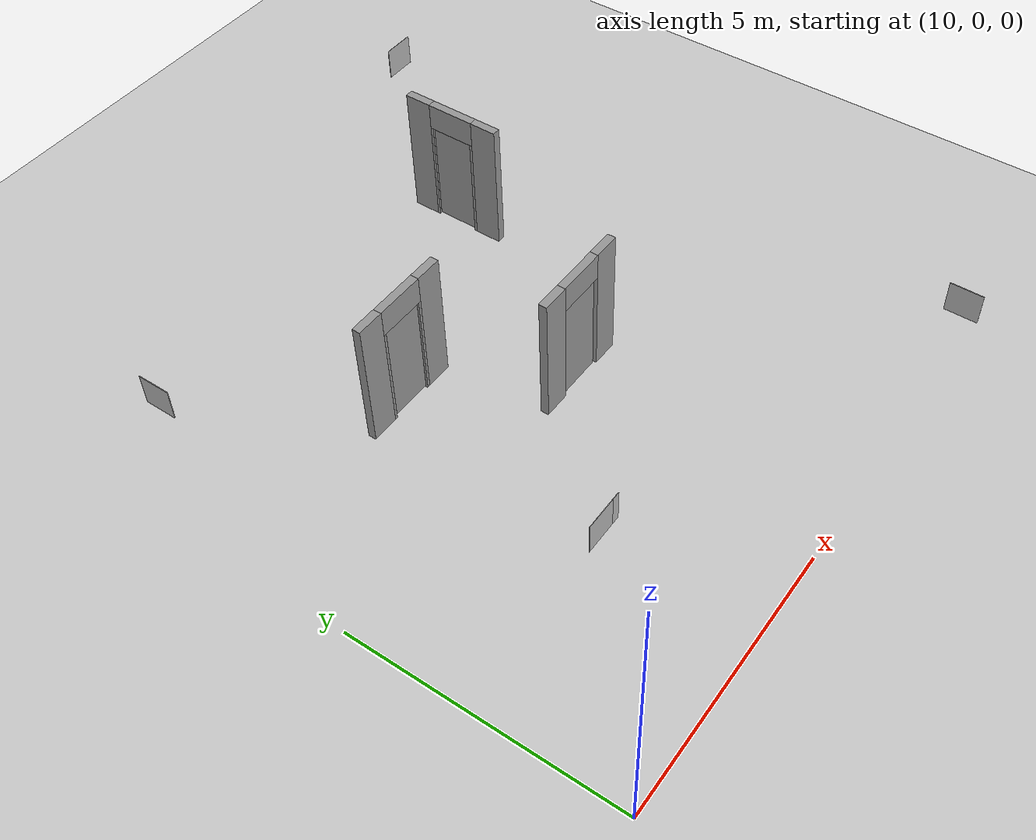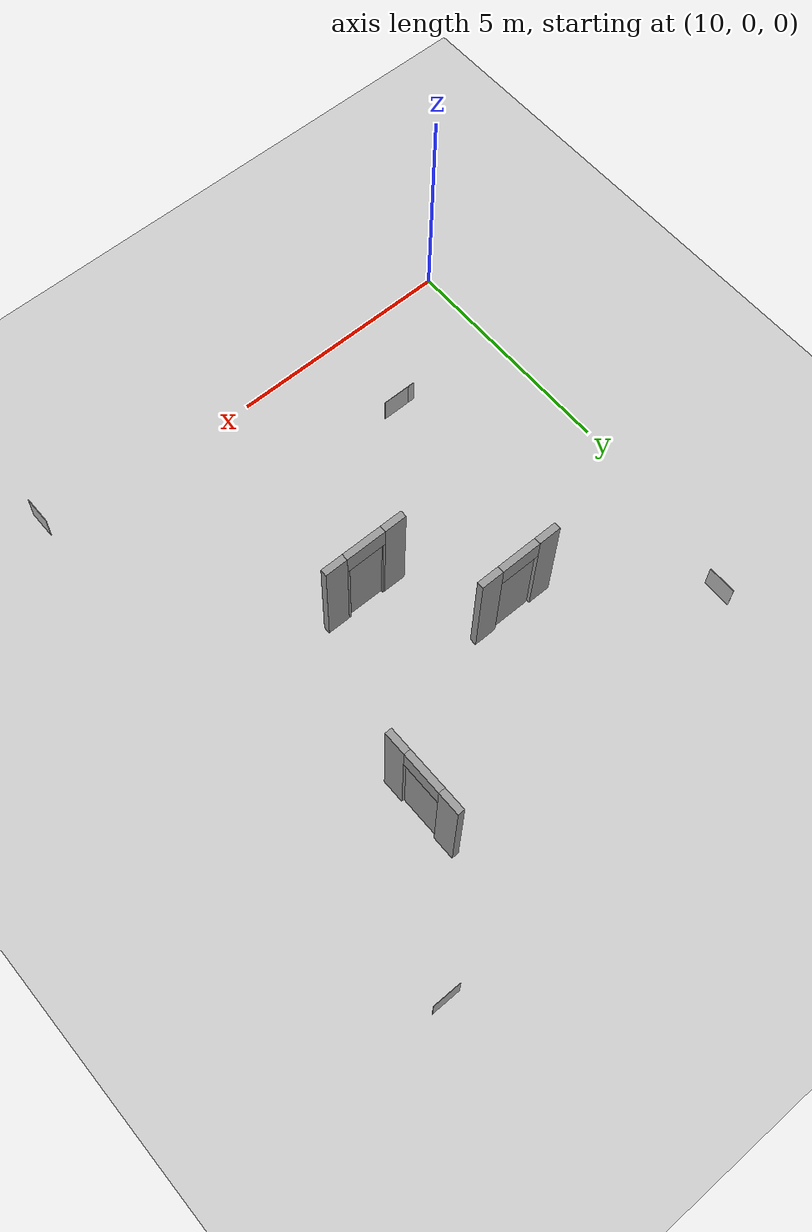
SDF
<sdf version="1.7">
 <world name="default">
  <model name="ground_plane">
   <static>1</static>
   <link name="link">
    <collision name="collision">
     <geometry><plane><normal>0 0 1</normal><size>100 100</size></plane></geometry>
     <surface><friction><ode><mu>100</mu><mu2>50</mu2></ode></friction></surface>
    </collision>
    <visual name="visual">
     <cast_shadows>0</cast_shadows>
     <geometry><plane><normal>0 0 1</normal><size>100 100</size></plane></geometry>
     <material>
      <script><uri>file://media/materials/scripts/gazebo.material</uri><name>Gazebo/Grey</name></script>
     </material>
    </visual>
   </link>
  </model>
  <model name="wall_with_door_no_gap_0">
   <link name="Wall">
    <pose>0 0 0 0 -4e-06 0</pose>
    <inertial>
     <inertia><ixx>1</ixx><ixy>0</ixy><ixz>0</ixz><iyy>1</iyy><iyz>0</iyz><izz>1</izz></inertia>
     <mass>1</mass>
    </inertial>
    <visual name="Wall_Visual_4">
     <pose>0.425 -0.055 1 0 -0 0</pose>
     <geometry><box><size>0.05 0.04 2</size></box></geometry>
     <material>
      <script><uri>file://media/materials/scripts/gazebo.material</uri><name>Gazebo/Grey</name></script>
      <ambient>1 1 1 1</ambient>
      <shader type="pixel"><normal_map>__default__</normal_map></shader>
      <emissive>0 0 0 1</emissive>
      <diffuse>0.7 0.7 0.7 1</diffuse>
      <specular>0.01 0.01 0.01 1</specular>
     </material>
     <meta><layer>0</layer></meta>
    </visual>
    <visual name="Wall_Visual_0">
     <pose>-0.7 0 1.25 0 -0 0</pose>
     <geometry><box><size>0.5 0.15 2.5</size></box></geometry>
     <material>
      <script><uri>file://media/materials/scripts/gazebo.material</uri><name>Gazebo/Grey</name></script>
      <ambient>1 1 1 1</ambient>
      <shader type="pixel"><normal_map>__default__</normal_map></shader>
      <emissive>0 0 0 1</emissive>
      <diffuse>0.7 0.7 0.7 1</diffuse>
      <specular>0.01 0.01 0.01 1</specular>
     </material>
     <meta><layer>0</layer></meta>
    </visual>
    <visual name="Wall_visual_3">
     <pose>-0.425 -0.055 1 0 -0 0</pose>
     <geometry><box><size>0.05 0.04 2</size></box></geometry>
     <material>
      <script><uri>file://media/materials/scripts/gazebo.material</uri><name>Gazebo/Grey</name></script>
      <ambient>1 1 1 1</ambient>
      <shader type="pixel"><normal_map>__default__</normal_map></shader>
      <emissive>0 0 0 1</emissive>
      <diffuse>0.7 0.7 0.7 1</diffuse>
      <specular>0.01 0.01 0.01 1</specular>
     </material>
     <meta><layer>0</layer></meta>
    </visual>
    <visual name="Wall_Visual_1">
     <pose>0.7 0 1.25 0 -0 0</pose>
     <geometry><box><size>0.5 0.15 2.5</size></box></geometry>
     <material>
      <script><uri>file://media/materials/scripts/gazebo.material</uri><name>Gazebo/Grey</name></script>
      <ambient>1 1 1 1</ambient>
      <shader type="pixel"><normal_map>__default__</normal_map></shader>
      <emissive>0 0 0 1</emissive>
      <diffuse>0.7 0.7 0.7 1</diffuse>
      <specular>0.01 0.01 0.01 1</specular>
     </material>
     <meta><layer>0</layer></meta>
    </visual>
    <visual name="Wall_Visual_2">
     <pose>0 0 2.25 0 -0 0</pose>
     <geometry><box><size>0.9 0.15 0.5</size></box></geometry>
     <material>
      <script><uri>file://media/materials/scripts/gazebo.material</uri><name>Gazebo/Grey</name></script>
      <ambient>1 1 1 1</ambient>
      <shader type="pixel"><normal_map>__default__</normal_map></shader>
      <emissive>0 0 0 1</emissive>
      <diffuse>0.7 0.7 0.7 1</diffuse>
      <specular>0.01 0.01 0.01 1</specular>
     </material>
     <meta><layer>0</layer></meta>
    </visual>
    <collision name="Wall_Collision_3">
     <pose>-0.425 -0.055 1 0 -0 0</pose>
     <geometry><box><size>0.05 0.04 2</size></box></geometry>
     <surface>
      <friction>
       <ode><mu>1</mu><mu2>1</mu2><fdir1>0 0 0</fdir1><slip1>0</slip1><slip2>0</slip2></ode>
       <torsional>
        <coefficient>1</coefficient>
        <patch_radius>0</patch_radius>
        <surface_radius>0</surface_radius>
        <use_patch_radius>1</use_patch_radius>
        <ode><slip>0</slip></ode>
       </torsional>
      </friction>
      <bounce><restitution_coefficient>0</restitution_coefficient><threshold>1e+06</threshold></bounce>
      <contact>
       <collide_without_contact>0</collide_without_contact>
       <collide_without_contact_bitmask>1</collide_without_contact_bitmask>
       <collide_bitmask>1</collide_bitmask>
       <ode>
        <soft_cfm>0</soft_cfm>
        <soft_erp>0.2</soft_erp>
        <kp>1e+13</kp>
        <kd>1</kd>
        <max_vel>0.01</max_vel>
        <min_depth>0</min_depth>
       </ode>
       <bullet>
        <split_impulse>1</split_impulse>
        <split_impulse_penetration_threshold>-0.01</split_impulse_penetration_threshold>
        <soft_cfm>0</soft_cfm>
        <soft_erp>0.2</soft_erp>
        <kp>1e+13</kp>
        <kd>1</kd>
       </bullet>
      </contact>
     </surface>
    </collision>
    <collision name="Wall_Collision_4">
     <pose>0.425 -0.055 1 0 -0 0</pose>
     <geometry><box><size>0.05 0.04 2</size></box></geometry>
     <surface>
      <friction>
       <ode><mu>1</mu><mu2>1</mu2><fdir1>0 0 0</fdir1><slip1>0</slip1><slip2>0</slip2></ode>
       <torsional>
        <coefficient>1</coefficient>
        <patch_radius>0</patch_radius>
        <surface_radius>0</surface_radius>
        <use_patch_radius>1</use_patch_radius>
        <ode><slip>0</slip></ode>
       </torsional>
      </friction>
      <bounce><restitution_coefficient>0</restitution_coefficient><threshold>1e+06</threshold></bounce>
      <contact>
       <collide_without_contact>0</collide_without_contact>
       <collide_without_contact_bitmask>1</collide_without_contact_bitmask>
       <collide_bitmask>1</collide_bitmask>
       <ode>
        <soft_cfm>0</soft_cfm>
        <soft_erp>0.2</soft_erp>
        <kp>1e+13</kp>
        <kd>1</kd>
        <max_vel>0.01</max_vel>
        <min_depth>0</min_depth>
       </ode>
       <bullet>
        <split_impulse>1</split_impulse>
        <split_impulse_penetration_threshold>-0.01</split_impulse_penetration_threshold>
        <soft_cfm>0</soft_cfm>
        <soft_erp>0.2</soft_erp>
        <kp>1e+13</kp>
        <kd>1</kd>
       </bullet>
      </contact>
     </surface>
    </collision>
    <collision name="Wall_Collision_1">
     <pose>0.7 0 1.25 0 -0 0</pose>
     <geometry><box><size>0.5 0.15 2.5</size></box></geometry>
     <surface>
      <friction>
       <ode><mu>1</mu><mu2>1</mu2><fdir1>0 0 0</fdir1><slip1>0</slip1><slip2>0</slip2></ode>
       <torsional>
        <coefficient>1</coefficient>
        <patch_radius>0</patch_radius>
        <surface_radius>0</surface_radius>
        <use_patch_radius>1</use_patch_radius>
        <ode><slip>0</slip></ode>
       </torsional>
      </friction>
      <bounce><restitution_coefficient>0</restitution_coefficient><threshold>1e+06</threshold></bounce>
      <contact>
       <collide_without_contact>0</collide_without_contact>
       <collide_without_contact_bitmask>1</collide_without_contact_bitmask>
       <collide_bitmask>1</collide_bitmask>
       <ode>
        <soft_cfm>0</soft_cfm>
        <soft_erp>0.2</soft_erp>
        <kp>1e+13</kp>
        <kd>1</kd>
        <max_vel>0.01</max_vel>
        <min_depth>0</min_depth>
       </ode>
       <bullet>
        <split_impulse>1</split_impulse>
        <split_impulse_penetration_threshold>-0.01</split_impulse_penetration_threshold>
        <soft_cfm>0</soft_cfm>
        <soft_erp>0.2</soft_erp>
        <kp>1e+13</kp>
        <kd>1</kd>
       </bullet>
      </contact>
     </surface>
    </collision>
    <collision name="Wall_Collision_0">
     <pose>-0.7 0 1.25 0 -0 0</pose>
     <geometry><box><size>0.5 0.15 2.5</size></box></geometry>
     <surface>
      <friction>
       <ode><mu>1</mu><mu2>1</mu2><fdir1>0 0 0</fdir1><slip1>0</slip1><slip2>0</slip2></ode>
       <torsional>
        <coefficient>1</coefficient>
        <patch_radius>0</patch_radius>
        <surface_radius>0</surface_radius>
        <use_patch_radius>1</use_patch_radius>
        <ode><slip>0</slip></ode>
       </torsional>
      </friction>
      <bounce><restitution_coefficient>0</restitution_coefficient><threshold>1e+06</threshold></bounce>
      <contact>
       <collide_without_contact>0</collide_without_contact>
       <collide_without_contact_bitmask>1</collide_without_contact_bitmask>
       <collide_bitmask>1</collide_bitmask>
       <ode>
        <soft_cfm>0</soft_cfm>
        <soft_erp>0.2</soft_erp>
        <kp>1e+13</kp>
        <kd>1</kd>
        <max_vel>0.01</max_vel>
        <min_depth>0</min_depth>
       </ode>
       <bullet>
        <split_impulse>1</split_impulse>
        <split_impulse_penetration_threshold>-0.01</split_impulse_penetration_threshold>
        <soft_cfm>0</soft_cfm>
        <soft_erp>0.2</soft_erp>
        <kp>1e+13</kp>
        <kd>1</kd>
       </bullet>
      </contact>
     </surface>
    </collision>
    <collision name="Wall_Collision_2">
     <pose>0 0 2.25 0 -0 0</pose>
     <geometry><box><size>0.9 0.15 0.5</size></box></geometry>
     <surface>
      <friction>
       <ode><mu>1</mu><mu2>1</mu2><fdir1>0 0 0</fdir1><slip1>0</slip1><slip2>0</slip2></ode>
       <torsional>
        <coefficient>1</coefficient>
        <patch_radius>0</patch_radius>
        <surface_radius>0</surface_radius>
        <use_patch_radius>1</use_patch_radius>
        <ode><slip>0</slip></ode>
       </torsional>
      </friction>
      <bounce><restitution_coefficient>0</restitution_coefficient><threshold>1e+06</threshold></bounce>
      <contact>
       <collide_without_contact>0</collide_without_contact>
       <collide_without_contact_bitmask>1</collide_without_contact_bitmask>
       <collide_bitmask>1</collide_bitmask>
       <ode>
        <soft_cfm>0</soft_cfm>
        <soft_erp>0.2</soft_erp>
        <kp>1e+13</kp>
        <kd>1</kd>
        <max_vel>0.01</max_vel>
        <min_depth>0</min_depth>
       </ode>
       <bullet>
        <split_impulse>1</split_impulse>
        <split_impulse_penetration_threshold>-0.01</split_impulse_penetration_threshold>
        <soft_cfm>0</soft_cfm>
        <soft_erp>0.2</soft_erp>
        <kp>1e+13</kp>
        <kd>1</kd>
       </bullet>
      </contact>
     </surface>
    </collision>
    <static>1</static>
   </link>
   <link name="door">
    <inertial>
     <mass>1</mass>
     <inertia>
      <ixx>0.166667</ixx>
      <ixy>0</ixy>
      <ixz>0</ixz>
      <iyy>0.166667</iyy>
      <iyz>0</iyz>
      <izz>0.166667</izz>
     </inertia>
    </inertial>
    <pose>-0 -0 1 0 -4e-06 0</pose>
    <visual name="visual">
     <pose>0.01 0 0 0 -0 0</pose>
     <geometry><box><size>0.86 0.04 2</size></box></geometry>
     <material>
      <lighting>1</lighting>
      <script><uri>file://media/materials/scripts/gazebo.material</uri><name>Gazebo/Grey</name></script>
      <shader type="pixel"><normal_map>__default__</normal_map></shader>
      <ambient>0.3 0.3 0.3 1</ambient>
      <diffuse>0.7 0.7 0.7 1</diffuse>
      <specular>0.01 0.01 0.01 1</specular>
      <emissive>0 0 0 1</emissive>
     </material>
    </visual>
    <collision name="collision">
     <pose>0.01 0 0 0 -0 0</pose>
     <geometry><box><size>0.84 0.04 2</size></box></geometry>
     <surface>
      <friction>
       <ode><mu>1</mu><mu2>1</mu2><fdir1>0 0 0</fdir1><slip1>0</slip1><slip2>0</slip2></ode>
       <torsional>
        <coefficient>1</coefficient>
        <patch_radius>0</patch_radius>
        <surface_radius>0</surface_radius>
        <use_patch_radius>1</use_patch_radius>
        <ode><slip>0</slip></ode>
       </torsional>
      </friction>
      <bounce><restitution_coefficient>0</restitution_coefficient><threshold>1e+06</threshold></bounce>
      <contact>
       <collide_without_contact>0</collide_without_contact>
       <collide_without_contact_bitmask>1</collide_without_contact_bitmask>
       <collide_bitmask>1</collide_bitmask>
       <ode>
        <soft_cfm>0</soft_cfm>
        <soft_erp>0.2</soft_erp>
        <kp>1e+13</kp>
        <kd>1</kd>
        <max_vel>0.01</max_vel>
        <min_depth>0</min_depth>
       </ode>
       <bullet>
        <split_impulse>1</split_impulse>
        <split_impulse_penetration_threshold>-0.01</split_impulse_penetration_threshold>
        <soft_cfm>0</soft_cfm>
        <soft_erp>0.2</soft_erp>
        <kp>1e+13</kp>
        <kd>1</kd>
       </bullet>
      </contact>
     </surface>
    </collision>
    <static>0</static>
   </link>
   <joint name="Door_JOINT" type="revolute">
    <parent>Wall</parent>
    <child>door</child>
    <pose>-0.43 0 0 0 -0 0</pose>
    <axis>
     <xyz>0 0 1</xyz>
     <limit><lower>0</lower><upper>1.57</upper><effort>-1</effort><velocity>-1</velocity></limit>
     <dynamics>
      <spring_reference>0</spring_reference>
      <spring_stiffness>0</spring_stiffness>
      <damping>0</damping>
      <friction>0</friction>
     </dynamics>
    </axis>
    <physics>
     <ode><limit><cfm>0</cfm><erp>0.2</erp></limit><suspension><cfm>0</cfm><erp>0.2</erp></suspension></ode>
    </physics>
   </joint>
   <joint name="WALL_FIXED" type="fixed"><parent>world</parent><child>Wall</child></joint>
   <plugin name="wall_and_door_plugin" filename="libDoorControlPlugin.so">
    <initial_position>1.57</initial_position>
    <switch_flag>true</switch_flag>
    <switch_duration>15</switch_duration>
   </plugin>
   <static>0</static>
   <pose>14 7 0 0 -0 0</pose>
  </model>
  <model name="wall_with_door_no_gap_1">
   <link name="Wall">
    <pose>0 0 0 0 -4e-06 0</pose>
    <inertial>
     <inertia><ixx>1</ixx><ixy>0</ixy><ixz>0</ixz><iyy>1</iyy><iyz>0</iyz><izz>1</izz></inertia>
     <mass>1</mass>
    </inertial>
    <visual name="Wall_Visual_4">
     <pose>0.425 -0.055 1 0 -0 0</pose>
     <geometry><box><size>0.05 0.04 2</size></box></geometry>
     <material>
      <script><uri>file://media/materials/scripts/gazebo.material</uri><name>Gazebo/Grey</name></script>
      <ambient>1 1 1 1</ambient>
      <shader type="pixel"><normal_map>__default__</normal_map></shader>
      <emissive>0 0 0 1</emissive>
      <diffuse>0.7 0.7 0.7 1</diffuse>
      <specular>0.01 0.01 0.01 1</specular>
     </material>
     <meta><layer>0</layer></meta>
    </visual>
    <visual name="Wall_Visual_0">
     <pose>-0.7 0 1.25 0 -0 0</pose>
     <geometry><box><size>0.5 0.15 2.5</size></box></geometry>
     <material>
      <script><uri>file://media/materials/scripts/gazebo.material</uri><name>Gazebo/Grey</name></script>
      <ambient>1 1 1 1</ambient>
      <shader type="pixel"><normal_map>__default__</normal_map></shader>
      <emissive>0 0 0 1</emissive>
      <diffuse>0.7 0.7 0.7 1</diffuse>
      <specular>0.01 0.01 0.01 1</specular>
     </material>
     <meta><layer>0</layer></meta>
    </visual>
    <visual name="Wall_visual_3">
     <pose>-0.425 -0.055 1 0 -0 0</pose>
     <geometry><box><size>0.05 0.04 2</size></box></geometry>
     <material>
      <script><uri>file://media/materials/scripts/gazebo.material</uri><name>Gazebo/Grey</name></script>
      <ambient>1 1 1 1</ambient>
      <shader type="pixel"><normal_map>__default__</normal_map></shader>
      <emissive>0 0 0 1</emissive>
      <diffuse>0.7 0.7 0.7 1</diffuse>
      <specular>0.01 0.01 0.01 1</specular>
     </material>
     <meta><layer>0</layer></meta>
    </visual>
    <visual name="Wall_Visual_1">
     <pose>0.7 0 1.25 0 -0 0</pose>
     <geometry><box><size>0.5 0.15 2.5</size></box></geometry>
     <material>
      <script><uri>file://media/materials/scripts/gazebo.material</uri><name>Gazebo/Grey</name></script>
      <ambient>1 1 1 1</ambient>
      <shader type="pixel"><normal_map>__default__</normal_map></shader>
      <emissive>0 0 0 1</emissive>
      <diffuse>0.7 0.7 0.7 1</diffuse>
      <specular>0.01 0.01 0.01 1</specular>
     </material>
     <meta><layer>0</layer></meta>
    </visual>
    <visual name="Wall_Visual_2">
     <pose>0 0 2.25 0 -0 0</pose>
     <geometry><box><size>0.9 0.15 0.5</size></box></geometry>
     <material>
      <script><uri>file://media/materials/scripts/gazebo.material</uri><name>Gazebo/Grey</name></script>
      <ambient>1 1 1 1</ambient>
      <shader type="pixel"><normal_map>__default__</normal_map></shader>
      <emissive>0 0 0 1</emissive>
      <diffuse>0.7 0.7 0.7 1</diffuse>
      <specular>0.01 0.01 0.01 1</specular>
     </material>
     <meta><layer>0</layer></meta>
    </visual>
    <collision name="Wall_Collision_3">
     <pose>-0.425 -0.055 1 0 -0 0</pose>
     <geometry><box><size>0.05 0.04 2</size></box></geometry>
     <surface>
      <friction>
       <ode><mu>1</mu><mu2>1</mu2><fdir1>0 0 0</fdir1><slip1>0</slip1><slip2>0</slip2></ode>
       <torsional>
        <coefficient>1</coefficient>
        <patch_radius>0</patch_radius>
        <surface_radius>0</surface_radius>
        <use_patch_radius>1</use_patch_radius>
        <ode><slip>0</slip></ode>
       </torsional>
      </friction>
      <bounce><restitution_coefficient>0</restitution_coefficient><threshold>1e+06</threshold></bounce>
      <contact>
       <collide_without_contact>0</collide_without_contact>
       <collide_without_contact_bitmask>1</collide_without_contact_bitmask>
       <collide_bitmask>1</collide_bitmask>
       <ode>
        <soft_cfm>0</soft_cfm>
        <soft_erp>0.2</soft_erp>
        <kp>1e+13</kp>
        <kd>1</kd>
        <max_vel>0.01</max_vel>
        <min_depth>0</min_depth>
       </ode>
       <bullet>
        <split_impulse>1</split_impulse>
        <split_impulse_penetration_threshold>-0.01</split_impulse_penetration_threshold>
        <soft_cfm>0</soft_cfm>
        <soft_erp>0.2</soft_erp>
        <kp>1e+13</kp>
        <kd>1</kd>
       </bullet>
      </contact>
     </surface>
    </collision>
    <collision name="Wall_Collision_4">
     <pose>0.425 -0.055 1 0 -0 0</pose>
     <geometry><box><size>0.05 0.04 2</size></box></geometry>
     <surface>
      <friction>
       <ode><mu>1</mu><mu2>1</mu2><fdir1>0 0 0</fdir1><slip1>0</slip1><slip2>0</slip2></ode>
       <torsional>
        <coefficient>1</coefficient>
        <patch_radius>0</patch_radius>
        <surface_radius>0</surface_radius>
        <use_patch_radius>1</use_patch_radius>
        <ode><slip>0</slip></ode>
       </torsional>
      </friction>
      <bounce><restitution_coefficient>0</restitution_coefficient><threshold>1e+06</threshold></bounce>
      <contact>
       <collide_without_contact>0</collide_without_contact>
       <collide_without_contact_bitmask>1</collide_without_contact_bitmask>
       <collide_bitmask>1</collide_bitmask>
       <ode>
        <soft_cfm>0</soft_cfm>
        <soft_erp>0.2</soft_erp>
        <kp>1e+13</kp>
        <kd>1</kd>
        <max_vel>0.01</max_vel>
        <min_depth>0</min_depth>
       </ode>
       <bullet>
        <split_impulse>1</split_impulse>
        <split_impulse_penetration_threshold>-0.01</split_impulse_penetration_threshold>
        <soft_cfm>0</soft_cfm>
        <soft_erp>0.2</soft_erp>
        <kp>1e+13</kp>
        <kd>1</kd>
       </bullet>
      </contact>
     </surface>
    </collision>
    <collision name="Wall_Collision_1">
     <pose>0.7 0 1.25 0 -0 0</pose>
     <geometry><box><size>0.5 0.15 2.5</size></box></geometry>
     <surface>
      <friction>
       <ode><mu>1</mu><mu2>1</mu2><fdir1>0 0 0</fdir1><slip1>0</slip1><slip2>0</slip2></ode>
       <torsional>
        <coefficient>1</coefficient>
        <patch_radius>0</patch_radius>
        <surface_radius>0</surface_radius>
        <use_patch_radius>1</use_patch_radius>
        <ode><slip>0</slip></ode>
       </torsional>
      </friction>
      <bounce><restitution_coefficient>0</restitution_coefficient><threshold>1e+06</threshold></bounce>
      <contact>
       <collide_without_contact>0</collide_without_contact>
       <collide_without_contact_bitmask>1</collide_without_contact_bitmask>
       <collide_bitmask>1</collide_bitmask>
       <ode>
        <soft_cfm>0</soft_cfm>
        <soft_erp>0.2</soft_erp>
        <kp>1e+13</kp>
        <kd>1</kd>
        <max_vel>0.01</max_vel>
        <min_depth>0</min_depth>
       </ode>
       <bullet>
        <split_impulse>1</split_impulse>
        <split_impulse_penetration_threshold>-0.01</split_impulse_penetration_threshold>
        <soft_cfm>0</soft_cfm>
        <soft_erp>0.2</soft_erp>
        <kp>1e+13</kp>
        <kd>1</kd>
       </bullet>
      </contact>
     </surface>
    </collision>
    <collision name="Wall_Collision_0">
     <pose>-0.7 0 1.25 0 -0 0</pose>
     <geometry><box><size>0.5 0.15 2.5</size></box></geometry>
     <surface>
      <friction>
       <ode><mu>1</mu><mu2>1</mu2><fdir1>0 0 0</fdir1><slip1>0</slip1><slip2>0</slip2></ode>
       <torsional>
        <coefficient>1</coefficient>
        <patch_radius>0</patch_radius>
        <surface_radius>0</surface_radius>
        <use_patch_radius>1</use_patch_radius>
        <ode><slip>0</slip></ode>
       </torsional>
      </friction>
      <bounce><restitution_coefficient>0</restitution_coefficient><threshold>1e+06</threshold></bounce>
      <contact>
       <collide_without_contact>0</collide_without_contact>
       <collide_without_contact_bitmask>1</collide_without_contact_bitmask>
       <collide_bitmask>1</collide_bitmask>
       <ode>
        <soft_cfm>0</soft_cfm>
        <soft_erp>0.2</soft_erp>
        <kp>1e+13</kp>
        <kd>1</kd>
        <max_vel>0.01</max_vel>
        <min_depth>0</min_depth>
       </ode>
       <bullet>
        <split_impulse>1</split_impulse>
        <split_impulse_penetration_threshold>-0.01</split_impulse_penetration_threshold>
        <soft_cfm>0</soft_cfm>
        <soft_erp>0.2</soft_erp>
        <kp>1e+13</kp>
        <kd>1</kd>
       </bullet>
      </contact>
     </surface>
    </collision>
    <collision name="Wall_Collision_2">
     <pose>0 0 2.25 0 -0 0</pose>
     <geometry><box><size>0.9 0.15 0.5</size></box></geometry>
     <surface>
      <friction>
       <ode><mu>1</mu><mu2>1</mu2><fdir1>0 0 0</fdir1><slip1>0</slip1><slip2>0</slip2></ode>
       <torsional>
        <coefficient>1</coefficient>
        <patch_radius>0</patch_radius>
        <surface_radius>0</surface_radius>
        <use_patch_radius>1</use_patch_radius>
        <ode><slip>0</slip></ode>
       </torsional>
      </friction>
      <bounce><restitution_coefficient>0</restitution_coefficient><threshold>1e+06</threshold></bounce>
      <contact>
       <collide_without_contact>0</collide_without_contact>
       <collide_without_contact_bitmask>1</collide_without_contact_bitmask>
       <collide_bitmask>1</collide_bitmask>
       <ode>
        <soft_cfm>0</soft_cfm>
        <soft_erp>0.2</soft_erp>
        <kp>1e+13</kp>
        <kd>1</kd>
        <max_vel>0.01</max_vel>
        <min_depth>0</min_depth>
       </ode>
       <bullet>
        <split_impulse>1</split_impulse>
        <split_impulse_penetration_threshold>-0.01</split_impulse_penetration_threshold>
        <soft_cfm>0</soft_cfm>
        <soft_erp>0.2</soft_erp>
        <kp>1e+13</kp>
        <kd>1</kd>
       </bullet>
      </contact>
     </surface>
    </collision>
    <static>1</static>
   </link>
   <link name="door">
    <inertial>
     <mass>1</mass>
     <inertia>
      <ixx>0.166667</ixx>
      <ixy>0</ixy>
      <ixz>0</ixz>
      <iyy>0.166667</iyy>
      <iyz>0</iyz>
      <izz>0.166667</izz>
     </inertia>
    </inertial>
    <pose>-0 -0 1 0 -4e-06 0</pose>
    <visual name="visual">
     <pose>0.01 0 0 0 -0 0</pose>
     <geometry><box><size>0.86 0.04 2</size></box></geometry>
     <material>
      <lighting>1</lighting>
      <script><uri>file://media/materials/scripts/gazebo.material</uri><name>Gazebo/Grey</name></script>
      <shader type="pixel"><normal_map>__default__</normal_map></shader>
      <ambient>0.3 0.3 0.3 1</ambient>
      <diffuse>0.7 0.7 0.7 1</diffuse>
      <specular>0.01 0.01 0.01 1</specular>
      <emissive>0 0 0 1</emissive>
     </material>
    </visual>
    <collision name="collision">
     <pose>0.01 0 0 0 -0 0</pose>
     <geometry><box><size>0.84 0.04 2</size></box></geometry>
     <surface>
      <friction>
       <ode><mu>1</mu><mu2>1</mu2><fdir1>0 0 0</fdir1><slip1>0</slip1><slip2>0</slip2></ode>
       <torsional>
        <coefficient>1</coefficient>
        <patch_radius>0</patch_radius>
        <surface_radius>0</surface_radius>
        <use_patch_radius>1</use_patch_radius>
        <ode><slip>0</slip></ode>
       </torsional>
      </friction>
      <bounce><restitution_coefficient>0</restitution_coefficient><threshold>1e+06</threshold></bounce>
      <contact>
       <collide_without_contact>0</collide_without_contact>
       <collide_without_contact_bitmask>1</collide_without_contact_bitmask>
       <collide_bitmask>1</collide_bitmask>
       <ode>
        <soft_cfm>0</soft_cfm>
        <soft_erp>0.2</soft_erp>
        <kp>1e+13</kp>
        <kd>1</kd>
        <max_vel>0.01</max_vel>
        <min_depth>0</min_depth>
       </ode>
       <bullet>
        <split_impulse>1</split_impulse>
        <split_impulse_penetration_threshold>-0.01</split_impulse_penetration_threshold>
        <soft_cfm>0</soft_cfm>
        <soft_erp>0.2</soft_erp>
        <kp>1e+13</kp>
        <kd>1</kd>
       </bullet>
      </contact>
     </surface>
    </collision>
    <static>0</static>
   </link>
   <joint name="Door_JOINT" type="revolute">
    <parent>Wall</parent>
    <child>door</child>
    <pose>-0.43 0 0 0 -0 0</pose>
    <axis>
     <xyz>0 0 1</xyz>
     <limit><lower>0</lower><upper>1.57</upper><effort>-1</effort><velocity>-1</velocity></limit>
     <dynamics>
      <spring_reference>0</spring_reference>
      <spring_stiffness>0</spring_stiffness>
      <damping>0</damping>
      <friction>0</friction>
     </dynamics>
    </axis>
    <physics>
     <ode><limit><cfm>0</cfm><erp>0.2</erp></limit><suspension><cfm>0</cfm><erp>0.2</erp></suspension></ode>
    </physics>
   </joint>
   <joint name="WALL_FIXED" type="fixed"><parent>world</parent><child>Wall</child></joint>
   <plugin name="wall_and_door_plugin" filename="libDoorControlPlugin.so">
    <initial_position>0</initial_position>
    <switch_flag>true</switch_flag>
    <switch_duration>15</switch_duration>
   </plugin>
   <static>0</static>
   <pose>18 9 0 0 0 -1.57</pose>
  </model>
  <model name="wall_with_door_no_gap_4">
   <link name="Wall">
    <pose>0 0 0 0 -4e-06 0</pose>
    <inertial>
     <inertia><ixx>1</ixx><ixy>0</ixy><ixz>0</ixz><iyy>1</iyy><iyz>0</iyz><izz>1</izz></inertia>
     <mass>1</mass>
    </inertial>
    <visual name="Wall_Visual_4">
     <pose>0.425 -0.055 1 0 -0 0</pose>
     <geometry><box><size>0.05 0.04 2</size></box></geometry>
     <material>
      <script><uri>file://media/materials/scripts/gazebo.material</uri><name>Gazebo/Grey</name></script>
      <ambient>1 1 1 1</ambient>
      <shader type="pixel"><normal_map>__default__</normal_map></shader>
      <emissive>0 0 0 1</emissive>
      <diffuse>0.7 0.7 0.7 1</diffuse>
      <specular>0.01 0.01 0.01 1</specular>
     </material>
     <meta><layer>0</layer></meta>
    </visual>
    <visual name="Wall_Visual_0">
     <pose>-0.7 0 1.25 0 -0 0</pose>
     <geometry><box><size>0.5 0.15 2.5</size></box></geometry>
     <material>
      <script><uri>file://media/materials/scripts/gazebo.material</uri><name>Gazebo/Grey</name></script>
      <ambient>1 1 1 1</ambient>
      <shader type="pixel"><normal_map>__default__</normal_map></shader>
      <emissive>0 0 0 1</emissive>
      <diffuse>0.7 0.7 0.7 1</diffuse>
      <specular>0.01 0.01 0.01 1</specular>
     </material>
     <meta><layer>0</layer></meta>
    </visual>
    <visual name="Wall_visual_3">
     <pose>-0.425 -0.055 1 0 -0 0</pose>
     <geometry><box><size>0.05 0.04 2</size></box></geometry>
     <material>
      <script><uri>file://media/materials/scripts/gazebo.material</uri><name>Gazebo/Grey</name></script>
      <ambient>1 1 1 1</ambient>
      <shader type="pixel"><normal_map>__default__</normal_map></shader>
      <emissive>0 0 0 1</emissive>
      <diffuse>0.7 0.7 0.7 1</diffuse>
      <specular>0.01 0.01 0.01 1</specular>
     </material>
     <meta><layer>0</layer></meta>
    </visual>
    <visual name="Wall_Visual_1">
     <pose>0.7 0 1.25 0 -0 0</pose>
     <geometry><box><size>0.5 0.15 2.5</size></box></geometry>
     <material>
      <script><uri>file://media/materials/scripts/gazebo.material</uri><name>Gazebo/Grey</name></script>
      <ambient>1 1 1 1</ambient>
      <shader type="pixel"><normal_map>__default__</normal_map></shader>
      <emissive>0 0 0 1</emissive>
      <diffuse>0.7 0.7 0.7 1</diffuse>
      <specular>0.01 0.01 0.01 1</specular>
     </material>
     <meta><layer>0</layer></meta>
    </visual>
    <visual name="Wall_Visual_2">
     <pose>0 0 2.25 0 -0 0</pose>
     <geometry><box><size>0.9 0.15 0.5</size></box></geometry>
     <material>
      <script><uri>file://media/materials/scripts/gazebo.material</uri><name>Gazebo/Grey</name></script>
      <ambient>1 1 1 1</ambient>
      <shader type="pixel"><normal_map>__default__</normal_map></shader>
      <emissive>0 0 0 1</emissive>
      <diffuse>0.7 0.7 0.7 1</diffuse>
      <specular>0.01 0.01 0.01 1</specular>
     </material>
     <meta><layer>0</layer></meta>
    </visual>
    <collision name="Wall_Collision_3">
     <pose>-0.425 -0.055 1 0 -0 0</pose>
     <geometry><box><size>0.05 0.04 2</size></box></geometry>
     <surface>
      <friction>
       <ode><mu>1</mu><mu2>1</mu2><fdir1>0 0 0</fdir1><slip1>0</slip1><slip2>0</slip2></ode>
       <torsional>
        <coefficient>1</coefficient>
        <patch_radius>0</patch_radius>
        <surface_radius>0</surface_radius>
        <use_patch_radius>1</use_patch_radius>
        <ode><slip>0</slip></ode>
       </torsional>
      </friction>
      <bounce><restitution_coefficient>0</restitution_coefficient><threshold>1e+06</threshold></bounce>
      <contact>
       <collide_without_contact>0</collide_without_contact>
       <collide_without_contact_bitmask>1</collide_without_contact_bitmask>
       <collide_bitmask>1</collide_bitmask>
       <ode>
        <soft_cfm>0</soft_cfm>
        <soft_erp>0.2</soft_erp>
        <kp>1e+13</kp>
        <kd>1</kd>
        <max_vel>0.01</max_vel>
        <min_depth>0</min_depth>
       </ode>
       <bullet>
        <split_impulse>1</split_impulse>
        <split_impulse_penetration_threshold>-0.01</split_impulse_penetration_threshold>
        <soft_cfm>0</soft_cfm>
        <soft_erp>0.2</soft_erp>
        <kp>1e+13</kp>
        <kd>1</kd>
       </bullet>
      </contact>
     </surface>
    </collision>
    <collision name="Wall_Collision_4">
     <pose>0.425 -0.055 1 0 -0 0</pose>
     <geometry><box><size>0.05 0.04 2</size></box></geometry>
     <surface>
      <friction>
       <ode><mu>1</mu><mu2>1</mu2><fdir1>0 0 0</fdir1><slip1>0</slip1><slip2>0</slip2></ode>
       <torsional>
        <coefficient>1</coefficient>
        <patch_radius>0</patch_radius>
        <surface_radius>0</surface_radius>
        <use_patch_radius>1</use_patch_radius>
        <ode><slip>0</slip></ode>
       </torsional>
      </friction>
      <bounce><restitution_coefficient>0</restitution_coefficient><threshold>1e+06</threshold></bounce>
      <contact>
       <collide_without_contact>0</collide_without_contact>
       <collide_without_contact_bitmask>1</collide_without_contact_bitmask>
       <collide_bitmask>1</collide_bitmask>
       <ode>
        <soft_cfm>0</soft_cfm>
        <soft_erp>0.2</soft_erp>
        <kp>1e+13</kp>
        <kd>1</kd>
        <max_vel>0.01</max_vel>
        <min_depth>0</min_depth>
       </ode>
       <bullet>
        <split_impulse>1</split_impulse>
        <split_impulse_penetration_threshold>-0.01</split_impulse_penetration_threshold>
        <soft_cfm>0</soft_cfm>
        <soft_erp>0.2</soft_erp>
        <kp>1e+13</kp>
        <kd>1</kd>
       </bullet>
      </contact>
     </surface>
    </collision>
    <collision name="Wall_Collision_1">
     <pose>0.7 0 1.25 0 -0 0</pose>
     <geometry><box><size>0.5 0.15 2.5</size></box></geometry>
     <surface>
      <friction>
       <ode><mu>1</mu><mu2>1</mu2><fdir1>0 0 0</fdir1><slip1>0</slip1><slip2>0</slip2></ode>
       <torsional>
        <coefficient>1</coefficient>
        <patch_radius>0</patch_radius>
        <surface_radius>0</surface_radius>
        <use_patch_radius>1</use_patch_radius>
        <ode><slip>0</slip></ode>
       </torsional>
      </friction>
      <bounce><restitution_coefficient>0</restitution_coefficient><threshold>1e+06</threshold></bounce>
      <contact>
       <collide_without_contact>0</collide_without_contact>
       <collide_without_contact_bitmask>1</collide_without_contact_bitmask>
       <collide_bitmask>1</collide_bitmask>
       <ode>
        <soft_cfm>0</soft_cfm>
        <soft_erp>0.2</soft_erp>
        <kp>1e+13</kp>
        <kd>1</kd>
        <max_vel>0.01</max_vel>
        <min_depth>0</min_depth>
       </ode>
       <bullet>
        <split_impulse>1</split_impulse>
        <split_impulse_penetration_threshold>-0.01</split_impulse_penetration_threshold>
        <soft_cfm>0</soft_cfm>
        <soft_erp>0.2</soft_erp>
        <kp>1e+13</kp>
        <kd>1</kd>
       </bullet>
      </contact>
     </surface>
    </collision>
    <collision name="Wall_Collision_0">
     <pose>-0.7 0 1.25 0 -0 0</pose>
     <geometry><box><size>0.5 0.15 2.5</size></box></geometry>
     <surface>
      <friction>
       <ode><mu>1</mu><mu2>1</mu2><fdir1>0 0 0</fdir1><slip1>0</slip1><slip2>0</slip2></ode>
       <torsional>
        <coefficient>1</coefficient>
        <patch_radius>0</patch_radius>
        <surface_radius>0</surface_radius>
        <use_patch_radius>1</use_patch_radius>
        <ode><slip>0</slip></ode>
       </torsional>
      </friction>
      <bounce><restitution_coefficient>0</restitution_coefficient><threshold>1e+06</threshold></bounce>
      <contact>
       <collide_without_contact>0</collide_without_contact>
       <collide_without_contact_bitmask>1</collide_without_contact_bitmask>
       <collide_bitmask>1</collide_bitmask>
       <ode>
        <soft_cfm>0</soft_cfm>
        <soft_erp>0.2</soft_erp>
        <kp>1e+13</kp>
        <kd>1</kd>
        <max_vel>0.01</max_vel>
        <min_depth>0</min_depth>
       </ode>
       <bullet>
        <split_impulse>1</split_impulse>
        <split_impulse_penetration_threshold>-0.01</split_impulse_penetration_threshold>
        <soft_cfm>0</soft_cfm>
        <soft_erp>0.2</soft_erp>
        <kp>1e+13</kp>
        <kd>1</kd>
       </bullet>
      </contact>
     </surface>
    </collision>
    <collision name="Wall_Collision_2">
     <pose>0 0 2.25 0 -0 0</pose>
     <geometry><box><size>0.9 0.15 0.5</size></box></geometry>
     <surface>
      <friction>
       <ode><mu>1</mu><mu2>1</mu2><fdir1>0 0 0</fdir1><slip1>0</slip1><slip2>0</slip2></ode>
       <torsional>
        <coefficient>1</coefficient>
        <patch_radius>0</patch_radius>
        <surface_radius>0</surface_radius>
        <use_patch_radius>1</use_patch_radius>
        <ode><slip>0</slip></ode>
       </torsional>
      </friction>
      <bounce><restitution_coefficient>0</restitution_coefficient><threshold>1e+06</threshold></bounce>
      <contact>
       <collide_without_contact>0</collide_without_contact>
       <collide_without_contact_bitmask>1</collide_without_contact_bitmask>
       <collide_bitmask>1</collide_bitmask>
       <ode>
        <soft_cfm>0</soft_cfm>
        <soft_erp>0.2</soft_erp>
        <kp>1e+13</kp>
        <kd>1</kd>
        <max_vel>0.01</max_vel>
        <min_depth>0</min_depth>
       </ode>
       <bullet>
        <split_impulse>1</split_impulse>
        <split_impulse_penetration_threshold>-0.01</split_impulse_penetration_threshold>
        <soft_cfm>0</soft_cfm>
        <soft_erp>0.2</soft_erp>
        <kp>1e+13</kp>
        <kd>1</kd>
       </bullet>
      </contact>
     </surface>
    </collision>
    <static>1</static>
   </link>
   <link name="door">
    <inertial>
     <mass>1</mass>
     <inertia>
      <ixx>0.166667</ixx>
      <ixy>0</ixy>
      <ixz>0</ixz>
      <iyy>0.166667</iyy>
      <iyz>0</iyz>
      <izz>0.166667</izz>
     </inertia>
    </inertial>
    <pose>-0 -0 1 0 -4e-06 0</pose>
    <visual name="visual">
     <pose>0.01 0 0 0 -0 0</pose>
     <geometry><box><size>0.86 0.04 2</size></box></geometry>
     <material>
      <lighting>1</lighting>
      <script><uri>file://media/materials/scripts/gazebo.material</uri><name>Gazebo/Grey</name></script>
      <shader type="pixel"><normal_map>__default__</normal_map></shader>
      <ambient>0.3 0.3 0.3 1</ambient>
      <diffuse>0.7 0.7 0.7 1</diffuse>
      <specular>0.01 0.01 0.01 1</specular>
      <emissive>0 0 0 1</emissive>
     </material>
    </visual>
    <collision name="collision">
     <pose>0.01 0 0 0 -0 0</pose>
     <geometry><box><size>0.84 0.04 2</size></box></geometry>
     <surface>
      <friction>
       <ode><mu>1</mu><mu2>1</mu2><fdir1>0 0 0</fdir1><slip1>0</slip1><slip2>0</slip2></ode>
       <torsional>
        <coefficient>1</coefficient>
        <patch_radius>0</patch_radius>
        <surface_radius>0</surface_radius>
        <use_patch_radius>1</use_patch_radius>
        <ode><slip>0</slip></ode>
       </torsional>
      </friction>
      <bounce><restitution_coefficient>0</restitution_coefficient><threshold>1e+06</threshold></bounce>
      <contact>
       <collide_without_contact>0</collide_without_contact>
       <collide_without_contact_bitmask>1</collide_without_contact_bitmask>
       <collide_bitmask>1</collide_bitmask>
       <ode>
        <soft_cfm>0</soft_cfm>
        <soft_erp>0.2</soft_erp>
        <kp>1e+13</kp>
        <kd>1</kd>
        <max_vel>0.01</max_vel>
        <min_depth>0</min_depth>
       </ode>
       <bullet>
        <split_impulse>1</split_impulse>
        <split_impulse_penetration_threshold>-0.01</split_impulse_penetration_threshold>
        <soft_cfm>0</soft_cfm>
        <soft_erp>0.2</soft_erp>
        <kp>1e+13</kp>
        <kd>1</kd>
       </bullet>
      </contact>
     </surface>
    </collision>
    <static>0</static>
   </link>
   <joint name="Door_JOINT" type="revolute">
    <parent>Wall</parent>
    <child>door</child>
    <pose>-0.43 0 0 0 -0 0</pose>
    <axis>
     <xyz>0 0 1</xyz>
     <limit><lower>0</lower><upper>1.57</upper><effort>-1</effort><velocity>-1</velocity></limit>
     <dynamics>
      <spring_reference>0</spring_reference>
      <spring_stiffness>0</spring_stiffness>
      <damping>0</damping>
      <friction>0</friction>
     </dynamics>
    </axis>
    <physics>
     <ode><limit><cfm>0</cfm><erp>0.2</erp></limit><suspension><cfm>0</cfm><erp>0.2</erp></suspension></ode>
    </physics>
   </joint>
   <joint name="WALL_FIXED" type="fixed"><parent>world</parent><child>Wall</child></joint>
   <plugin name="wall_and_door_plugin" filename="libDoorControlPlugin.so">
    <initial_position>0</initial_position>
    <switch_flag>true</switch_flag>
    <switch_duration>15</switch_duration>
   </plugin>
   <static>0</static>
   <pose>16 5 0 0 -0 3.14</pose>
  </model>
  <model name="static_apriltag_2">
   <link name="link">
    <pose>0 0 0 0 1.57 0</pose>
    <inertial>
     <mass>0.39</mass>
     <inertia><ixx>0.00058</ixx><ixy>0</ixy><ixz>0</ixz><iyy>0.00058</iyy><iyz>0</iyz><izz>0.00019</izz></inertia>
    </inertial>
    <collision name="collision"><geometry><box><size>0.6 0.6 0.01</size></box></geometry></collision>
    <visual name="visual">
     <geometry><box><size>0.6 0.6 0.01</size></box></geometry>
     <material>
      <script>
       <uri>model://apriltag/materials/scripts</uri>
       <uri>model://apriltag/materials/textures</uri>
       <name>apriltag/Diffuse2</name>
      </script>
     </material>
    </visual>
    <gravity>0</gravity>
   </link>
   <pose>11.075 9.5 1.25 0 -0 0</pose>
   <static>1</static>
   <pose>0.80811 0.829943 0 0 -0 0</pose>
  </model>
  <model name="static_apriltag_3">
   <link name="link">
    <pose>0 0 0 -1.57 1.57 -0</pose>
    <inertial>
     <mass>0.39</mass>
     <inertia><ixx>0.00058</ixx><ixy>0</ixy><ixz>0</ixz><iyy>0.00058</iyy><iyz>0</iyz><izz>0.00019</izz></inertia>
    </inertial>
    <collision name="collision"><geometry><box><size>0.6 0.6 0.01</size></box></geometry></collision>
    <visual name="visual">
     <geometry><box><size>0.6 0.6 0.01</size></box></geometry>
     <material>
      <script>
       <uri>model://apriltag/materials/scripts</uri>
       <uri>model://apriltag/materials/textures</uri>
       <name>apriltag/Diffuse3</name>
      </script>
     </material>
    </visual>
    <gravity>0</gravity>
   </link>
   <pose>20 11.925 1.25 0 -0 0</pose>
   <static>1</static>
   <pose>3.65849 3.02317 0 0 -0 0</pose>
  </model>
  <model name="static_apriltag_4">
   <link name="link">
    <pose>0 0 0 0 1.57 0</pose>
    <inertial>
     <mass>0.39</mass>
     <inertia><ixx>0.00058</ixx><ixy>0</ixy><ixz>0</ixz><iyy>0.00058</iyy><iyz>0</iyz><izz>0.00019</izz></inertia>
    </inertial>
    <collision name="collision"><geometry><box><size>0.6 0.6 0.01</size></box></geometry></collision>
    <visual name="visual">
     <geometry><box><size>0.6 0.6 0.01</size></box></geometry>
     <material>
      <script>
       <uri>model://apriltag/materials/scripts</uri>
       <uri>model://apriltag/materials/textures</uri>
       <name>apriltag/Diffuse4</name>
      </script>
     </material>
    </visual>
    <gravity>0</gravity>
   </link>
   <pose>20 0.075 1.25 0 -0 0</pose>
   <static>1</static>
   <pose>3.93537 3.29316 0 0 -0 0</pose>
  </model>
  <model name="static_apriltag_5">
   <link name="link">
    <pose>0 0 0 -1.57 1.57 -0</pose>
    <inertial>
     <mass>0.39</mass>
     <inertia><ixx>0.00058</ixx><ixy>0</ixy><ixz>0</ixz><iyy>0.00058</iyy><iyz>0</iyz><izz>0.00019</izz></inertia>
    </inertial>
    <collision name="collision"><geometry><box><size>0.6 0.6 0.01</size></box></geometry></collision>
    <visual name="visual">
     <geometry><box><size>0.6 0.6 0.01</size></box></geometry>
     <material>
      <script>
       <uri>model://apriltag/materials/scripts</uri>
       <uri>model://apriltag/materials/textures</uri>
       <name>apriltag/Diffuse5</name>
      </script>
     </material>
    </visual>
    <gravity>0</gravity>
   </link>
   <pose>13.075 2.5 1.25 0 -0 0</pose>
   <static>1</static>
   <pose>5.04082 3.71574 0 0 -0 0</pose>
  </model>
  <model name="static_apriltag_6">
   <link name="link">
    <pose>0 0 0 -1.57 1.57 -0</pose>
    <inertial>
     <mass>0.39</mass>
     <inertia><ixx>0.00058</ixx><ixy>0</ixy><ixz>0</ixz><iyy>0.00058</iyy><iyz>0</iyz><izz>0.00019</izz></inertia>
    </inertial>
    <collision name="collision"><geometry><box><size>0.6 0.6 0.01</size></box></geometry></collision>
    <visual name="visual">
     <geometry><box><size>0.6 0.6 0.01</size></box></geometry>
     <material>
      <script>
       <uri>model://apriltag/materials/scripts</uri>
       <uri>model://apriltag/materials/textures</uri>
       <name>apriltag/Diffuse6</name>
      </script>
     </material>
    </visual>
    <gravity>0</gravity>
   </link>
   <pose>12.925 2.5 1.25 0 -0 0</pose>
   <static>1</static>
   <pose>3.43144 4.34187 0 0 -0 0</pose>
  </model>
 </world>
</sdf>
